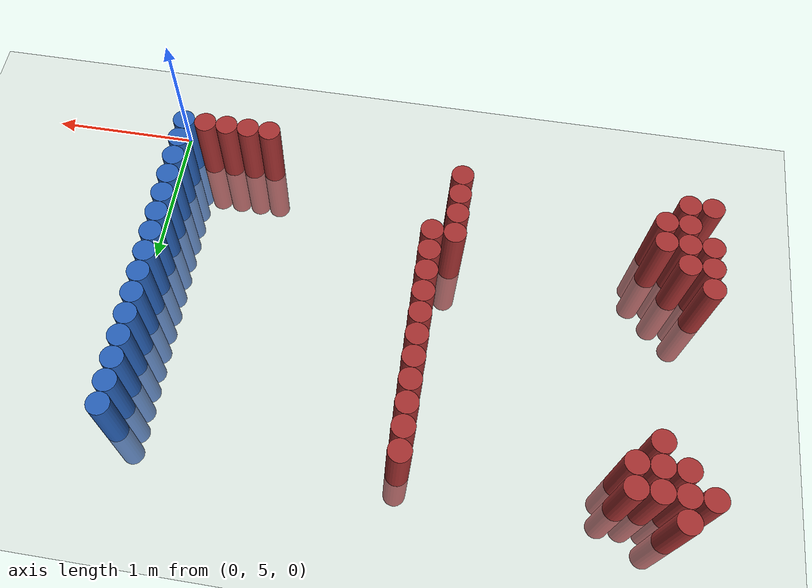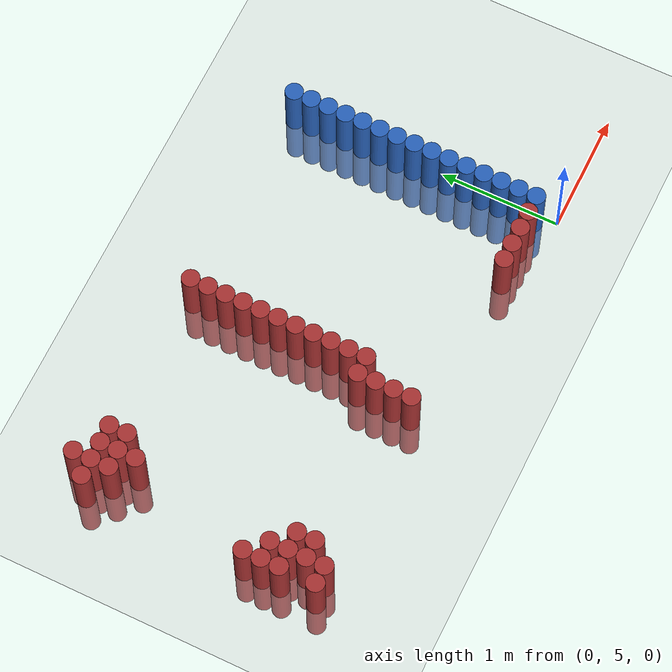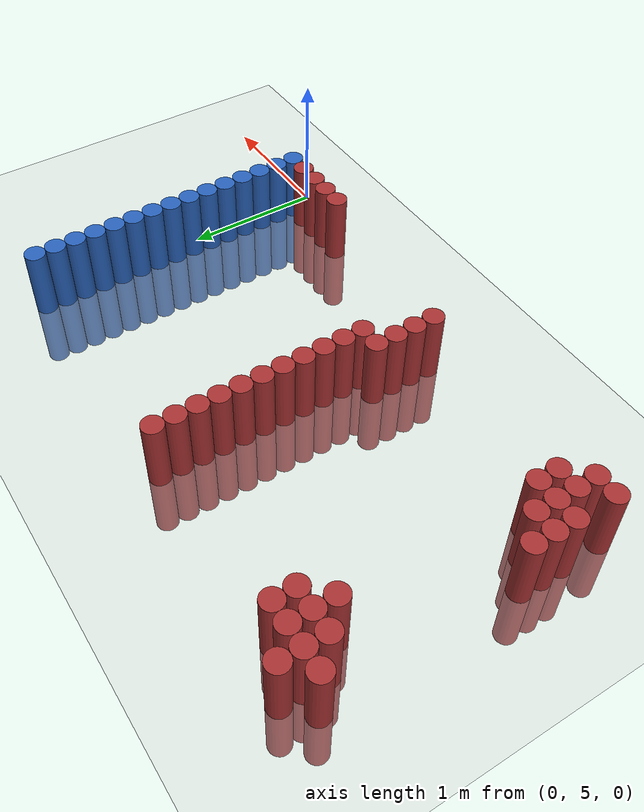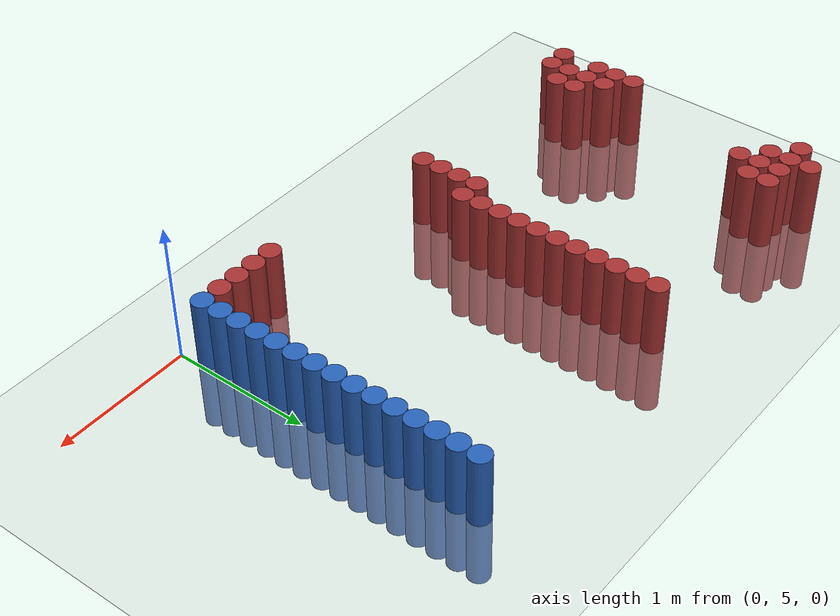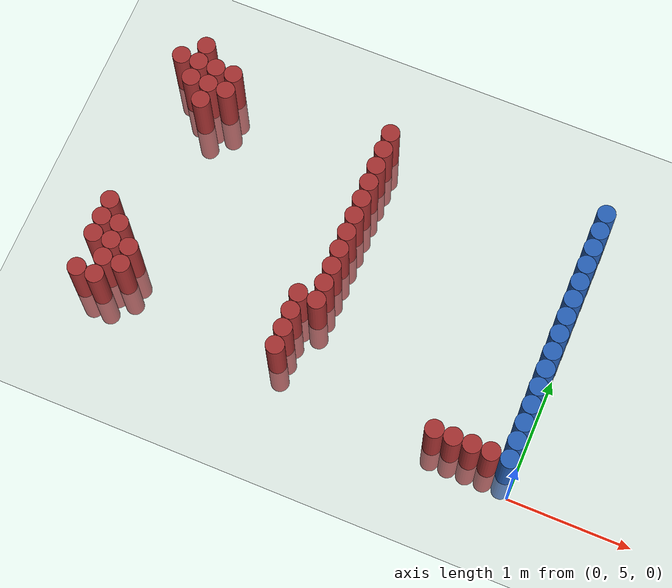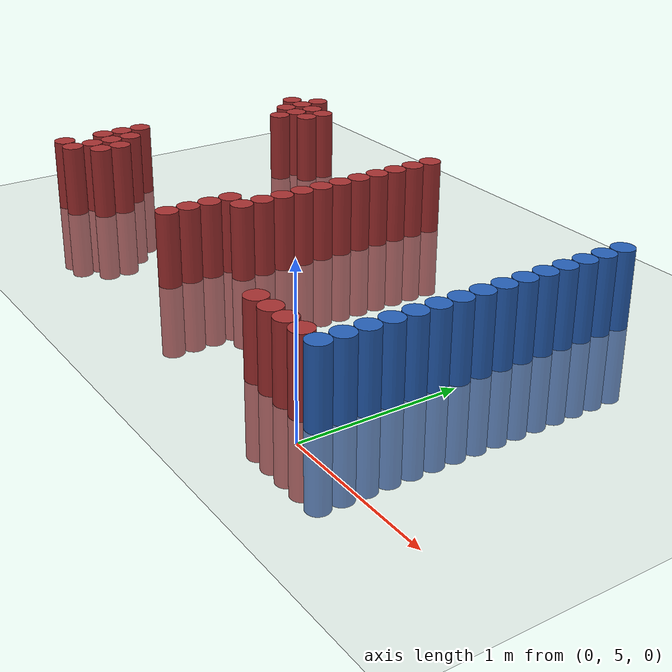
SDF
<sdf version="1.6">
 <world name="default">
  <model name="ground_plane">
   <static>1</static>
   <link name="link">
    <collision name="collision">
     <geometry><plane><normal>0 0 1</normal><size>100 100</size></plane></geometry>
     <surface><friction><ode><mu>100</mu><mu2>50</mu2></ode></friction></surface>
    </collision>
    <visual name="visual">
     <cast_shadows>0</cast_shadows>
     <geometry><plane><normal>0 0 1</normal><size>100 100</size></plane></geometry>
     <material>
      <script><uri>file://media/materials/scripts/gazebo.material</uri><name>Gazebo/Grey</name></script>
     </material>
    </visual>
   </link>
  </model>
  <model name="unit_cylinder_259">
   <static>1</static>
   <pose>-3.675000 5.325000 0.000000 0.000000 0.000000 0.000000</pose>
   <link name="link">
    <inertial>
     <mass>1</mass>
     <inertia><ixx>0.145833</ixx><ixy>0</ixy><ixz>0</ixz><iyy>0.145833</iyy><iyz>0</iyz><izz>0.125</izz></inertia>
    </inertial>
    <collision name="collision">
     <geometry><cylinder><radius>0.075000</radius><length>1</length></cylinder></geometry>
    </collision>
    <visual name="visual">
     <geometry><cylinder><radius>0.075000</radius><length>1</length></cylinder></geometry>
     <material>
      <ambient>0.648000 0.192000 0.192000 1</ambient>
      <diffuse>0.648000 0.192000 0.192000 1</diffuse>
     </material>
     <material>
      <script><name>Gazebo/Grey</name><uri>file://media/materials/scripts/gazebo.material</uri></script>
     </material>
    </visual>
   </link>
  </model>
  <model name="unit_cylinder_260">
   <static>1</static>
   <pose>-3.675000 5.625000 0.000000 0.000000 0.000000 0.000000</pose>
   <link name="link">
    <inertial>
     <mass>1</mass>
     <inertia><ixx>0.145833</ixx><ixy>0</ixy><ixz>0</ixz><iyy>0.145833</iyy><iyz>0</iyz><izz>0.125</izz></inertia>
    </inertial>
    <collision name="collision">
     <geometry><cylinder><radius>0.075000</radius><length>1</length></cylinder></geometry>
    </collision>
    <visual name="visual">
     <geometry><cylinder><radius>0.075000</radius><length>1</length></cylinder></geometry>
     <material>
      <ambient>0.648000 0.192000 0.192000 1</ambient>
      <diffuse>0.648000 0.192000 0.192000 1</diffuse>
     </material>
     <material>
      <script><name>Gazebo/Grey</name><uri>file://media/materials/scripts/gazebo.material</uri></script>
     </material>
    </visual>
   </link>
  </model>
  <model name="unit_cylinder_261">
   <static>1</static>
   <pose>-3.675000 5.775000 0.000000 0.000000 0.000000 0.000000</pose>
   <link name="link">
    <inertial>
     <mass>1</mass>
     <inertia><ixx>0.145833</ixx><ixy>0</ixy><ixz>0</ixz><iyy>0.145833</iyy><iyz>0</iyz><izz>0.125</izz></inertia>
    </inertial>
    <collision name="collision">
     <geometry><cylinder><radius>0.075000</radius><length>1</length></cylinder></geometry>
    </collision>
    <visual name="visual">
     <geometry><cylinder><radius>0.075000</radius><length>1</length></cylinder></geometry>
     <material>
      <ambient>0.648000 0.192000 0.192000 1</ambient>
      <diffuse>0.648000 0.192000 0.192000 1</diffuse>
     </material>
     <material>
      <script><name>Gazebo/Grey</name><uri>file://media/materials/scripts/gazebo.material</uri></script>
     </material>
    </visual>
   </link>
  </model>
  <model name="unit_cylinder_262">
   <static>1</static>
   <pose>-3.675000 5.925000 0.000000 0.000000 0.000000 0.000000</pose>
   <link name="link">
    <inertial>
     <mass>1</mass>
     <inertia><ixx>0.145833</ixx><ixy>0</ixy><ixz>0</ixz><iyy>0.145833</iyy><iyz>0</iyz><izz>0.125</izz></inertia>
    </inertial>
    <collision name="collision">
     <geometry><cylinder><radius>0.075000</radius><length>1</length></cylinder></geometry>
    </collision>
    <visual name="visual">
     <geometry><cylinder><radius>0.075000</radius><length>1</length></cylinder></geometry>
     <material>
      <ambient>0.648000 0.192000 0.192000 1</ambient>
      <diffuse>0.648000 0.192000 0.192000 1</diffuse>
     </material>
     <material>
      <script><name>Gazebo/Grey</name><uri>file://media/materials/scripts/gazebo.material</uri></script>
     </material>
    </visual>
   </link>
  </model>
  <model name="unit_cylinder_263">
   <static>1</static>
   <pose>-3.675000 7.275000 0.000000 0.000000 0.000000 0.000000</pose>
   <link name="link">
    <inertial>
     <mass>1</mass>
     <inertia><ixx>0.145833</ixx><ixy>0</ixy><ixz>0</ixz><iyy>0.145833</iyy><iyz>0</iyz><izz>0.125</izz></inertia>
    </inertial>
    <collision name="collision">
     <geometry><cylinder><radius>0.075000</radius><length>1</length></cylinder></geometry>
    </collision>
    <visual name="visual">
     <geometry><cylinder><radius>0.075000</radius><length>1</length></cylinder></geometry>
     <material>
      <ambient>0.648000 0.192000 0.192000 1</ambient>
      <diffuse>0.648000 0.192000 0.192000 1</diffuse>
     </material>
     <material>
      <script><name>Gazebo/Grey</name><uri>file://media/materials/scripts/gazebo.material</uri></script>
     </material>
    </visual>
   </link>
  </model>
  <model name="unit_cylinder_266">
   <static>1</static>
   <pose>-3.525000 5.325000 0.000000 0.000000 0.000000 0.000000</pose>
   <link name="link">
    <inertial>
     <mass>1</mass>
     <inertia><ixx>0.145833</ixx><ixy>0</ixy><ixz>0</ixz><iyy>0.145833</iyy><iyz>0</iyz><izz>0.125</izz></inertia>
    </inertial>
    <collision name="collision">
     <geometry><cylinder><radius>0.075000</radius><length>1</length></cylinder></geometry>
    </collision>
    <visual name="visual">
     <geometry><cylinder><radius>0.075000</radius><length>1</length></cylinder></geometry>
     <material>
      <ambient>0.648000 0.192000 0.192000 1</ambient>
      <diffuse>0.648000 0.192000 0.192000 1</diffuse>
     </material>
     <material>
      <script><name>Gazebo/Grey</name><uri>file://media/materials/scripts/gazebo.material</uri></script>
     </material>
    </visual>
   </link>
  </model>
  <model name="unit_cylinder_267">
   <static>1</static>
   <pose>-3.525000 5.475000 0.000000 0.000000 0.000000 0.000000</pose>
   <link name="link">
    <inertial>
     <mass>1</mass>
     <inertia><ixx>0.145833</ixx><ixy>0</ixy><ixz>0</ixz><iyy>0.145833</iyy><iyz>0</iyz><izz>0.125</izz></inertia>
    </inertial>
    <collision name="collision">
     <geometry><cylinder><radius>0.075000</radius><length>1</length></cylinder></geometry>
    </collision>
    <visual name="visual">
     <geometry><cylinder><radius>0.075000</radius><length>1</length></cylinder></geometry>
     <material>
      <ambient>0.648000 0.192000 0.192000 1</ambient>
      <diffuse>0.648000 0.192000 0.192000 1</diffuse>
     </material>
     <material>
      <script><name>Gazebo/Grey</name><uri>file://media/materials/scripts/gazebo.material</uri></script>
     </material>
    </visual>
   </link>
  </model>
  <model name="unit_cylinder_268">
   <static>1</static>
   <pose>-3.525000 5.625000 0.000000 0.000000 0.000000 0.000000</pose>
   <link name="link">
    <inertial>
     <mass>1</mass>
     <inertia><ixx>0.145833</ixx><ixy>0</ixy><ixz>0</ixz><iyy>0.145833</iyy><iyz>0</iyz><izz>0.125</izz></inertia>
    </inertial>
    <collision name="collision">
     <geometry><cylinder><radius>0.075000</radius><length>1</length></cylinder></geometry>
    </collision>
    <visual name="visual">
     <geometry><cylinder><radius>0.075000</radius><length>1</length></cylinder></geometry>
     <material>
      <ambient>0.648000 0.192000 0.192000 1</ambient>
      <diffuse>0.648000 0.192000 0.192000 1</diffuse>
     </material>
     <material>
      <script><name>Gazebo/Grey</name><uri>file://media/materials/scripts/gazebo.material</uri></script>
     </material>
    </visual>
   </link>
  </model>
  <model name="unit_cylinder_269">
   <static>1</static>
   <pose>-3.525000 5.775000 0.000000 0.000000 0.000000 0.000000</pose>
   <link name="link">
    <inertial>
     <mass>1</mass>
     <inertia><ixx>0.145833</ixx><ixy>0</ixy><ixz>0</ixz><iyy>0.145833</iyy><iyz>0</iyz><izz>0.125</izz></inertia>
    </inertial>
    <collision name="collision">
     <geometry><cylinder><radius>0.075000</radius><length>1</length></cylinder></geometry>
    </collision>
    <visual name="visual">
     <geometry><cylinder><radius>0.075000</radius><length>1</length></cylinder></geometry>
     <material>
      <ambient>0.648000 0.192000 0.192000 1</ambient>
      <diffuse>0.648000 0.192000 0.192000 1</diffuse>
     </material>
     <material>
      <script><name>Gazebo/Grey</name><uri>file://media/materials/scripts/gazebo.material</uri></script>
     </material>
    </visual>
   </link>
  </model>
  <model name="unit_cylinder_270">
   <static>1</static>
   <pose>-3.525000 7.125000 0.000000 0.000000 0.000000 0.000000</pose>
   <link name="link">
    <inertial>
     <mass>1</mass>
     <inertia><ixx>0.145833</ixx><ixy>0</ixy><ixz>0</ixz><iyy>0.145833</iyy><iyz>0</iyz><izz>0.125</izz></inertia>
    </inertial>
    <collision name="collision">
     <geometry><cylinder><radius>0.075000</radius><length>1</length></cylinder></geometry>
    </collision>
    <visual name="visual">
     <geometry><cylinder><radius>0.075000</radius><length>1</length></cylinder></geometry>
     <material>
      <ambient>0.648000 0.192000 0.192000 1</ambient>
      <diffuse>0.648000 0.192000 0.192000 1</diffuse>
     </material>
     <material>
      <script><name>Gazebo/Grey</name><uri>file://media/materials/scripts/gazebo.material</uri></script>
     </material>
    </visual>
   </link>
  </model>
  <model name="unit_cylinder_271">
   <static>1</static>
   <pose>-3.525000 7.275000 0.000000 0.000000 0.000000 0.000000</pose>
   <link name="link">
    <inertial>
     <mass>1</mass>
     <inertia><ixx>0.145833</ixx><ixy>0</ixy><ixz>0</ixz><iyy>0.145833</iyy><iyz>0</iyz><izz>0.125</izz></inertia>
    </inertial>
    <collision name="collision">
     <geometry><cylinder><radius>0.075000</radius><length>1</length></cylinder></geometry>
    </collision>
    <visual name="visual">
     <geometry><cylinder><radius>0.075000</radius><length>1</length></cylinder></geometry>
     <material>
      <ambient>0.648000 0.192000 0.192000 1</ambient>
      <diffuse>0.648000 0.192000 0.192000 1</diffuse>
     </material>
     <material>
      <script><name>Gazebo/Grey</name><uri>file://media/materials/scripts/gazebo.material</uri></script>
     </material>
    </visual>
   </link>
  </model>
  <model name="unit_cylinder_272">
   <static>1</static>
   <pose>-3.525000 7.425000 0.000000 0.000000 0.000000 0.000000</pose>
   <link name="link">
    <inertial>
     <mass>1</mass>
     <inertia><ixx>0.145833</ixx><ixy>0</ixy><ixz>0</ixz><iyy>0.145833</iyy><iyz>0</iyz><izz>0.125</izz></inertia>
    </inertial>
    <collision name="collision">
     <geometry><cylinder><radius>0.075000</radius><length>1</length></cylinder></geometry>
    </collision>
    <visual name="visual">
     <geometry><cylinder><radius>0.075000</radius><length>1</length></cylinder></geometry>
     <material>
      <ambient>0.648000 0.192000 0.192000 1</ambient>
      <diffuse>0.648000 0.192000 0.192000 1</diffuse>
     </material>
     <material>
      <script><name>Gazebo/Grey</name><uri>file://media/materials/scripts/gazebo.material</uri></script>
     </material>
    </visual>
   </link>
  </model>
  <model name="unit_cylinder_273">
   <static>1</static>
   <pose>-3.375000 5.475000 0.000000 0.000000 0.000000 0.000000</pose>
   <link name="link">
    <inertial>
     <mass>1</mass>
     <inertia><ixx>0.145833</ixx><ixy>0</ixy><ixz>0</ixz><iyy>0.145833</iyy><iyz>0</iyz><izz>0.125</izz></inertia>
    </inertial>
    <collision name="collision">
     <geometry><cylinder><radius>0.075000</radius><length>1</length></cylinder></geometry>
    </collision>
    <visual name="visual">
     <geometry><cylinder><radius>0.075000</radius><length>1</length></cylinder></geometry>
     <material>
      <ambient>0.648000 0.192000 0.192000 1</ambient>
      <diffuse>0.648000 0.192000 0.192000 1</diffuse>
     </material>
     <material>
      <script><name>Gazebo/Grey</name><uri>file://media/materials/scripts/gazebo.material</uri></script>
     </material>
    </visual>
   </link>
  </model>
  <model name="unit_cylinder_274">
   <static>1</static>
   <pose>-3.375000 5.625000 0.000000 0.000000 0.000000 0.000000</pose>
   <link name="link">
    <inertial>
     <mass>1</mass>
     <inertia><ixx>0.145833</ixx><ixy>0</ixy><ixz>0</ixz><iyy>0.145833</iyy><iyz>0</iyz><izz>0.125</izz></inertia>
    </inertial>
    <collision name="collision">
     <geometry><cylinder><radius>0.075000</radius><length>1</length></cylinder></geometry>
    </collision>
    <visual name="visual">
     <geometry><cylinder><radius>0.075000</radius><length>1</length></cylinder></geometry>
     <material>
      <ambient>0.648000 0.192000 0.192000 1</ambient>
      <diffuse>0.648000 0.192000 0.192000 1</diffuse>
     </material>
     <material>
      <script><name>Gazebo/Grey</name><uri>file://media/materials/scripts/gazebo.material</uri></script>
     </material>
    </visual>
   </link>
  </model>
  <model name="unit_cylinder_275">
   <static>1</static>
   <pose>-3.375000 6.975000 0.000000 0.000000 0.000000 0.000000</pose>
   <link name="link">
    <inertial>
     <mass>1</mass>
     <inertia><ixx>0.145833</ixx><ixy>0</ixy><ixz>0</ixz><iyy>0.145833</iyy><iyz>0</iyz><izz>0.125</izz></inertia>
    </inertial>
    <collision name="collision">
     <geometry><cylinder><radius>0.075000</radius><length>1</length></cylinder></geometry>
    </collision>
    <visual name="visual">
     <geometry><cylinder><radius>0.075000</radius><length>1</length></cylinder></geometry>
     <material>
      <ambient>0.648000 0.192000 0.192000 1</ambient>
      <diffuse>0.648000 0.192000 0.192000 1</diffuse>
     </material>
     <material>
      <script><name>Gazebo/Grey</name><uri>file://media/materials/scripts/gazebo.material</uri></script>
     </material>
    </visual>
   </link>
  </model>
  <model name="unit_cylinder_276">
   <static>1</static>
   <pose>-3.375000 7.125000 0.000000 0.000000 0.000000 0.000000</pose>
   <link name="link">
    <inertial>
     <mass>1</mass>
     <inertia><ixx>0.145833</ixx><ixy>0</ixy><ixz>0</ixz><iyy>0.145833</iyy><iyz>0</iyz><izz>0.125</izz></inertia>
    </inertial>
    <collision name="collision">
     <geometry><cylinder><radius>0.075000</radius><length>1</length></cylinder></geometry>
    </collision>
    <visual name="visual">
     <geometry><cylinder><radius>0.075000</radius><length>1</length></cylinder></geometry>
     <material>
      <ambient>0.648000 0.192000 0.192000 1</ambient>
      <diffuse>0.648000 0.192000 0.192000 1</diffuse>
     </material>
     <material>
      <script><name>Gazebo/Grey</name><uri>file://media/materials/scripts/gazebo.material</uri></script>
     </material>
    </visual>
   </link>
  </model>
  <model name="unit_cylinder_277">
   <static>1</static>
   <pose>-3.375000 7.275000 0.000000 0.000000 0.000000 0.000000</pose>
   <link name="link">
    <inertial>
     <mass>1</mass>
     <inertia><ixx>0.145833</ixx><ixy>0</ixy><ixz>0</ixz><iyy>0.145833</iyy><iyz>0</iyz><izz>0.125</izz></inertia>
    </inertial>
    <collision name="collision">
     <geometry><cylinder><radius>0.075000</radius><length>1</length></cylinder></geometry>
    </collision>
    <visual name="visual">
     <geometry><cylinder><radius>0.075000</radius><length>1</length></cylinder></geometry>
     <material>
      <ambient>0.648000 0.192000 0.192000 1</ambient>
      <diffuse>0.648000 0.192000 0.192000 1</diffuse>
     </material>
     <material>
      <script><name>Gazebo/Grey</name><uri>file://media/materials/scripts/gazebo.material</uri></script>
     </material>
    </visual>
   </link>
  </model>
  <model name="unit_cylinder_279">
   <static>1</static>
   <pose>-3.225000 7.125000 0.000000 0.000000 0.000000 0.000000</pose>
   <link name="link">
    <inertial>
     <mass>1</mass>
     <inertia><ixx>0.145833</ixx><ixy>0</ixy><ixz>0</ixz><iyy>0.145833</iyy><iyz>0</iyz><izz>0.125</izz></inertia>
    </inertial>
    <collision name="collision">
     <geometry><cylinder><radius>0.075000</radius><length>1</length></cylinder></geometry>
    </collision>
    <visual name="visual">
     <geometry><cylinder><radius>0.075000</radius><length>1</length></cylinder></geometry>
     <material>
      <ambient>0.648000 0.192000 0.192000 1</ambient>
      <diffuse>0.648000 0.192000 0.192000 1</diffuse>
     </material>
     <material>
      <script><name>Gazebo/Grey</name><uri>file://media/materials/scripts/gazebo.material</uri></script>
     </material>
    </visual>
   </link>
  </model>
  <model name="unit_cylinder_280">
   <static>1</static>
   <pose>-3.225000 7.275000 0.000000 0.000000 0.000000 0.000000</pose>
   <link name="link">
    <inertial>
     <mass>1</mass>
     <inertia><ixx>0.145833</ixx><ixy>0</ixy><ixz>0</ixz><iyy>0.145833</iyy><iyz>0</iyz><izz>0.125</izz></inertia>
    </inertial>
    <collision name="collision">
     <geometry><cylinder><radius>0.075000</radius><length>1</length></cylinder></geometry>
    </collision>
    <visual name="visual">
     <geometry><cylinder><radius>0.075000</radius><length>1</length></cylinder></geometry>
     <material>
      <ambient>0.648000 0.192000 0.192000 1</ambient>
      <diffuse>0.648000 0.192000 0.192000 1</diffuse>
     </material>
     <material>
      <script><name>Gazebo/Grey</name><uri>file://media/materials/scripts/gazebo.material</uri></script>
     </material>
    </visual>
   </link>
  </model>
  <model name="unit_cylinder_290">
   <static>1</static>
   <pose>-2.025000 5.325000 0.000000 0.000000 0.000000 0.000000</pose>
   <link name="link">
    <inertial>
     <mass>1</mass>
     <inertia><ixx>0.145833</ixx><ixy>0</ixy><ixz>0</ixz><iyy>0.145833</iyy><iyz>0</iyz><izz>0.125</izz></inertia>
    </inertial>
    <collision name="collision">
     <geometry><cylinder><radius>0.075000</radius><length>1</length></cylinder></geometry>
    </collision>
    <visual name="visual">
     <geometry><cylinder><radius>0.075000</radius><length>1</length></cylinder></geometry>
     <material>
      <ambient>0.648000 0.192000 0.192000 1</ambient>
      <diffuse>0.648000 0.192000 0.192000 1</diffuse>
     </material>
     <material>
      <script><name>Gazebo/Grey</name><uri>file://media/materials/scripts/gazebo.material</uri></script>
     </material>
    </visual>
   </link>
  </model>
  <model name="unit_cylinder_291">
   <static>1</static>
   <pose>-2.025000 5.475000 0.000000 0.000000 0.000000 0.000000</pose>
   <link name="link">
    <inertial>
     <mass>1</mass>
     <inertia><ixx>0.145833</ixx><ixy>0</ixy><ixz>0</ixz><iyy>0.145833</iyy><iyz>0</iyz><izz>0.125</izz></inertia>
    </inertial>
    <collision name="collision">
     <geometry><cylinder><radius>0.075000</radius><length>1</length></cylinder></geometry>
    </collision>
    <visual name="visual">
     <geometry><cylinder><radius>0.075000</radius><length>1</length></cylinder></geometry>
     <material>
      <ambient>0.648000 0.192000 0.192000 1</ambient>
      <diffuse>0.648000 0.192000 0.192000 1</diffuse>
     </material>
     <material>
      <script><name>Gazebo/Grey</name><uri>file://media/materials/scripts/gazebo.material</uri></script>
     </material>
    </visual>
   </link>
  </model>
  <model name="unit_cylinder_292">
   <static>1</static>
   <pose>-2.025000 5.625000 0.000000 0.000000 0.000000 0.000000</pose>
   <link name="link">
    <inertial>
     <mass>1</mass>
     <inertia><ixx>0.145833</ixx><ixy>0</ixy><ixz>0</ixz><iyy>0.145833</iyy><iyz>0</iyz><izz>0.125</izz></inertia>
    </inertial>
    <collision name="collision">
     <geometry><cylinder><radius>0.075000</radius><length>1</length></cylinder></geometry>
    </collision>
    <visual name="visual">
     <geometry><cylinder><radius>0.075000</radius><length>1</length></cylinder></geometry>
     <material>
      <ambient>0.648000 0.192000 0.192000 1</ambient>
      <diffuse>0.648000 0.192000 0.192000 1</diffuse>
     </material>
     <material>
      <script><name>Gazebo/Grey</name><uri>file://media/materials/scripts/gazebo.material</uri></script>
     </material>
    </visual>
   </link>
  </model>
  <model name="unit_cylinder_293">
   <static>1</static>
   <pose>-2.025000 5.775000 0.000000 0.000000 0.000000 0.000000</pose>
   <link name="link">
    <inertial>
     <mass>1</mass>
     <inertia><ixx>0.145833</ixx><ixy>0</ixy><ixz>0</ixz><iyy>0.145833</iyy><iyz>0</iyz><izz>0.125</izz></inertia>
    </inertial>
    <collision name="collision">
     <geometry><cylinder><radius>0.075000</radius><length>1</length></cylinder></geometry>
    </collision>
    <visual name="visual">
     <geometry><cylinder><radius>0.075000</radius><length>1</length></cylinder></geometry>
     <material>
      <ambient>0.648000 0.192000 0.192000 1</ambient>
      <diffuse>0.648000 0.192000 0.192000 1</diffuse>
     </material>
     <material>
      <script><name>Gazebo/Grey</name><uri>file://media/materials/scripts/gazebo.material</uri></script>
     </material>
    </visual>
   </link>
  </model>
  <model name="unit_cylinder_298">
   <static>1</static>
   <pose>-1.875000 5.775000 0.000000 0.000000 0.000000 0.000000</pose>
   <link name="link">
    <inertial>
     <mass>1</mass>
     <inertia><ixx>0.145833</ixx><ixy>0</ixy><ixz>0</ixz><iyy>0.145833</iyy><iyz>0</iyz><izz>0.125</izz></inertia>
    </inertial>
    <collision name="collision">
     <geometry><cylinder><radius>0.075000</radius><length>1</length></cylinder></geometry>
    </collision>
    <visual name="visual">
     <geometry><cylinder><radius>0.075000</radius><length>1</length></cylinder></geometry>
     <material>
      <ambient>0.648000 0.192000 0.192000 1</ambient>
      <diffuse>0.648000 0.192000 0.192000 1</diffuse>
     </material>
     <material>
      <script><name>Gazebo/Grey</name><uri>file://media/materials/scripts/gazebo.material</uri></script>
     </material>
    </visual>
   </link>
  </model>
  <model name="unit_cylinder_299">
   <static>1</static>
   <pose>-1.875000 5.925000 0.000000 0.000000 0.000000 0.000000</pose>
   <link name="link">
    <inertial>
     <mass>1</mass>
     <inertia><ixx>0.145833</ixx><ixy>0</ixy><ixz>0</ixz><iyy>0.145833</iyy><iyz>0</iyz><izz>0.125</izz></inertia>
    </inertial>
    <collision name="collision">
     <geometry><cylinder><radius>0.075000</radius><length>1</length></cylinder></geometry>
    </collision>
    <visual name="visual">
     <geometry><cylinder><radius>0.075000</radius><length>1</length></cylinder></geometry>
     <material>
      <ambient>0.648000 0.192000 0.192000 1</ambient>
      <diffuse>0.648000 0.192000 0.192000 1</diffuse>
     </material>
     <material>
      <script><name>Gazebo/Grey</name><uri>file://media/materials/scripts/gazebo.material</uri></script>
     </material>
    </visual>
   </link>
  </model>
  <model name="unit_cylinder_300">
   <static>1</static>
   <pose>-1.875000 6.075000 0.000000 0.000000 0.000000 0.000000</pose>
   <link name="link">
    <inertial>
     <mass>1</mass>
     <inertia><ixx>0.145833</ixx><ixy>0</ixy><ixz>0</ixz><iyy>0.145833</iyy><iyz>0</iyz><izz>0.125</izz></inertia>
    </inertial>
    <collision name="collision">
     <geometry><cylinder><radius>0.075000</radius><length>1</length></cylinder></geometry>
    </collision>
    <visual name="visual">
     <geometry><cylinder><radius>0.075000</radius><length>1</length></cylinder></geometry>
     <material>
      <ambient>0.648000 0.192000 0.192000 1</ambient>
      <diffuse>0.648000 0.192000 0.192000 1</diffuse>
     </material>
     <material>
      <script><name>Gazebo/Grey</name><uri>file://media/materials/scripts/gazebo.material</uri></script>
     </material>
    </visual>
   </link>
  </model>
  <model name="unit_cylinder_301">
   <static>1</static>
   <pose>-1.875000 6.225000 0.000000 0.000000 0.000000 0.000000</pose>
   <link name="link">
    <inertial>
     <mass>1</mass>
     <inertia><ixx>0.145833</ixx><ixy>0</ixy><ixz>0</ixz><iyy>0.145833</iyy><iyz>0</iyz><izz>0.125</izz></inertia>
    </inertial>
    <collision name="collision">
     <geometry><cylinder><radius>0.075000</radius><length>1</length></cylinder></geometry>
    </collision>
    <visual name="visual">
     <geometry><cylinder><radius>0.075000</radius><length>1</length></cylinder></geometry>
     <material>
      <ambient>0.648000 0.192000 0.192000 1</ambient>
      <diffuse>0.648000 0.192000 0.192000 1</diffuse>
     </material>
     <material>
      <script><name>Gazebo/Grey</name><uri>file://media/materials/scripts/gazebo.material</uri></script>
     </material>
    </visual>
   </link>
  </model>
  <model name="unit_cylinder_302">
   <static>1</static>
   <pose>-1.875000 6.375000 0.000000 0.000000 0.000000 0.000000</pose>
   <link name="link">
    <inertial>
     <mass>1</mass>
     <inertia><ixx>0.145833</ixx><ixy>0</ixy><ixz>0</ixz><iyy>0.145833</iyy><iyz>0</iyz><izz>0.125</izz></inertia>
    </inertial>
    <collision name="collision">
     <geometry><cylinder><radius>0.075000</radius><length>1</length></cylinder></geometry>
    </collision>
    <visual name="visual">
     <geometry><cylinder><radius>0.075000</radius><length>1</length></cylinder></geometry>
     <material>
      <ambient>0.648000 0.192000 0.192000 1</ambient>
      <diffuse>0.648000 0.192000 0.192000 1</diffuse>
     </material>
     <material>
      <script><name>Gazebo/Grey</name><uri>file://media/materials/scripts/gazebo.material</uri></script>
     </material>
    </visual>
   </link>
  </model>
  <model name="unit_cylinder_303">
   <static>1</static>
   <pose>-1.875000 6.525000 0.000000 0.000000 0.000000 0.000000</pose>
   <link name="link">
    <inertial>
     <mass>1</mass>
     <inertia><ixx>0.145833</ixx><ixy>0</ixy><ixz>0</ixz><iyy>0.145833</iyy><iyz>0</iyz><izz>0.125</izz></inertia>
    </inertial>
    <collision name="collision">
     <geometry><cylinder><radius>0.075000</radius><length>1</length></cylinder></geometry>
    </collision>
    <visual name="visual">
     <geometry><cylinder><radius>0.075000</radius><length>1</length></cylinder></geometry>
     <material>
      <ambient>0.648000 0.192000 0.192000 1</ambient>
      <diffuse>0.648000 0.192000 0.192000 1</diffuse>
     </material>
     <material>
      <script><name>Gazebo/Grey</name><uri>file://media/materials/scripts/gazebo.material</uri></script>
     </material>
    </visual>
   </link>
  </model>
  <model name="unit_cylinder_304">
   <static>1</static>
   <pose>-1.875000 6.675000 0.000000 0.000000 0.000000 0.000000</pose>
   <link name="link">
    <inertial>
     <mass>1</mass>
     <inertia><ixx>0.145833</ixx><ixy>0</ixy><ixz>0</ixz><iyy>0.145833</iyy><iyz>0</iyz><izz>0.125</izz></inertia>
    </inertial>
    <collision name="collision">
     <geometry><cylinder><radius>0.075000</radius><length>1</length></cylinder></geometry>
    </collision>
    <visual name="visual">
     <geometry><cylinder><radius>0.075000</radius><length>1</length></cylinder></geometry>
     <material>
      <ambient>0.648000 0.192000 0.192000 1</ambient>
      <diffuse>0.648000 0.192000 0.192000 1</diffuse>
     </material>
     <material>
      <script><name>Gazebo/Grey</name><uri>file://media/materials/scripts/gazebo.material</uri></script>
     </material>
    </visual>
   </link>
  </model>
  <model name="unit_cylinder_305">
   <static>1</static>
   <pose>-1.875000 6.825000 0.000000 0.000000 0.000000 0.000000</pose>
   <link name="link">
    <inertial>
     <mass>1</mass>
     <inertia><ixx>0.145833</ixx><ixy>0</ixy><ixz>0</ixz><iyy>0.145833</iyy><iyz>0</iyz><izz>0.125</izz></inertia>
    </inertial>
    <collision name="collision">
     <geometry><cylinder><radius>0.075000</radius><length>1</length></cylinder></geometry>
    </collision>
    <visual name="visual">
     <geometry><cylinder><radius>0.075000</radius><length>1</length></cylinder></geometry>
     <material>
      <ambient>0.648000 0.192000 0.192000 1</ambient>
      <diffuse>0.648000 0.192000 0.192000 1</diffuse>
     </material>
     <material>
      <script><name>Gazebo/Grey</name><uri>file://media/materials/scripts/gazebo.material</uri></script>
     </material>
    </visual>
   </link>
  </model>
  <model name="unit_cylinder_306">
   <static>1</static>
   <pose>-1.875000 6.975000 0.000000 0.000000 0.000000 0.000000</pose>
   <link name="link">
    <inertial>
     <mass>1</mass>
     <inertia><ixx>0.145833</ixx><ixy>0</ixy><ixz>0</ixz><iyy>0.145833</iyy><iyz>0</iyz><izz>0.125</izz></inertia>
    </inertial>
    <collision name="collision">
     <geometry><cylinder><radius>0.075000</radius><length>1</length></cylinder></geometry>
    </collision>
    <visual name="visual">
     <geometry><cylinder><radius>0.075000</radius><length>1</length></cylinder></geometry>
     <material>
      <ambient>0.648000 0.192000 0.192000 1</ambient>
      <diffuse>0.648000 0.192000 0.192000 1</diffuse>
     </material>
     <material>
      <script><name>Gazebo/Grey</name><uri>file://media/materials/scripts/gazebo.material</uri></script>
     </material>
    </visual>
   </link>
  </model>
  <model name="unit_cylinder_307">
   <static>1</static>
   <pose>-1.875000 7.125000 0.000000 0.000000 0.000000 0.000000</pose>
   <link name="link">
    <inertial>
     <mass>1</mass>
     <inertia><ixx>0.145833</ixx><ixy>0</ixy><ixz>0</ixz><iyy>0.145833</iyy><iyz>0</iyz><izz>0.125</izz></inertia>
    </inertial>
    <collision name="collision">
     <geometry><cylinder><radius>0.075000</radius><length>1</length></cylinder></geometry>
    </collision>
    <visual name="visual">
     <geometry><cylinder><radius>0.075000</radius><length>1</length></cylinder></geometry>
     <material>
      <ambient>0.648000 0.192000 0.192000 1</ambient>
      <diffuse>0.648000 0.192000 0.192000 1</diffuse>
     </material>
     <material>
      <script><name>Gazebo/Grey</name><uri>file://media/materials/scripts/gazebo.material</uri></script>
     </material>
    </visual>
   </link>
  </model>
  <model name="unit_cylinder_308">
   <static>1</static>
   <pose>-1.875000 7.275000 0.000000 0.000000 0.000000 0.000000</pose>
   <link name="link">
    <inertial>
     <mass>1</mass>
     <inertia><ixx>0.145833</ixx><ixy>0</ixy><ixz>0</ixz><iyy>0.145833</iyy><iyz>0</iyz><izz>0.125</izz></inertia>
    </inertial>
    <collision name="collision">
     <geometry><cylinder><radius>0.075000</radius><length>1</length></cylinder></geometry>
    </collision>
    <visual name="visual">
     <geometry><cylinder><radius>0.075000</radius><length>1</length></cylinder></geometry>
     <material>
      <ambient>0.648000 0.192000 0.192000 1</ambient>
      <diffuse>0.648000 0.192000 0.192000 1</diffuse>
     </material>
     <material>
      <script><name>Gazebo/Grey</name><uri>file://media/materials/scripts/gazebo.material</uri></script>
     </material>
    </visual>
   </link>
  </model>
  <model name="unit_cylinder_333">
   <static>1</static>
   <pose>-0.675000 5.175000 0.000000 0.000000 0.000000 0.000000</pose>
   <link name="link">
    <inertial>
     <mass>1</mass>
     <inertia><ixx>0.145833</ixx><ixy>0</ixy><ixz>0</ixz><iyy>0.145833</iyy><iyz>0</iyz><izz>0.125</izz></inertia>
    </inertial>
    <collision name="collision">
     <geometry><cylinder><radius>0.075000</radius><length>1</length></cylinder></geometry>
    </collision>
    <visual name="visual">
     <geometry><cylinder><radius>0.075000</radius><length>1</length></cylinder></geometry>
     <material>
      <ambient>0.648000 0.192000 0.192000 1</ambient>
      <diffuse>0.648000 0.192000 0.192000 1</diffuse>
     </material>
     <material>
      <script><name>Gazebo/Grey</name><uri>file://media/materials/scripts/gazebo.material</uri></script>
     </material>
    </visual>
   </link>
  </model>
  <model name="unit_cylinder_335">
   <static>1</static>
   <pose>-0.525000 5.175000 0.000000 0.000000 0.000000 0.000000</pose>
   <link name="link">
    <inertial>
     <mass>1</mass>
     <inertia><ixx>0.145833</ixx><ixy>0</ixy><ixz>0</ixz><iyy>0.145833</iyy><iyz>0</iyz><izz>0.125</izz></inertia>
    </inertial>
    <collision name="collision">
     <geometry><cylinder><radius>0.075000</radius><length>1</length></cylinder></geometry>
    </collision>
    <visual name="visual">
     <geometry><cylinder><radius>0.075000</radius><length>1</length></cylinder></geometry>
     <material>
      <ambient>0.648000 0.192000 0.192000 1</ambient>
      <diffuse>0.648000 0.192000 0.192000 1</diffuse>
     </material>
     <material>
      <script><name>Gazebo/Grey</name><uri>file://media/materials/scripts/gazebo.material</uri></script>
     </material>
    </visual>
   </link>
  </model>
  <model name="unit_cylinder_337">
   <static>1</static>
   <pose>-0.375000 5.175000 0.000000 0.000000 0.000000 0.000000</pose>
   <link name="link">
    <inertial>
     <mass>1</mass>
     <inertia><ixx>0.145833</ixx><ixy>0</ixy><ixz>0</ixz><iyy>0.145833</iyy><iyz>0</iyz><izz>0.125</izz></inertia>
    </inertial>
    <collision name="collision">
     <geometry><cylinder><radius>0.075000</radius><length>1</length></cylinder></geometry>
    </collision>
    <visual name="visual">
     <geometry><cylinder><radius>0.075000</radius><length>1</length></cylinder></geometry>
     <material>
      <ambient>0.648000 0.192000 0.192000 1</ambient>
      <diffuse>0.648000 0.192000 0.192000 1</diffuse>
     </material>
     <material>
      <script><name>Gazebo/Grey</name><uri>file://media/materials/scripts/gazebo.material</uri></script>
     </material>
    </visual>
   </link>
  </model>
  <model name="unit_cylinder_339">
   <static>1</static>
   <pose>-0.225000 5.175000 0.000000 0.000000 0.000000 0.000000</pose>
   <link name="link">
    <inertial>
     <mass>1</mass>
     <inertia><ixx>0.145833</ixx><ixy>0</ixy><ixz>0</ixz><iyy>0.145833</iyy><iyz>0</iyz><izz>0.125</izz></inertia>
    </inertial>
    <collision name="collision">
     <geometry><cylinder><radius>0.075000</radius><length>1</length></cylinder></geometry>
    </collision>
    <visual name="visual">
     <geometry><cylinder><radius>0.075000</radius><length>1</length></cylinder></geometry>
     <material>
      <ambient>0.648000 0.192000 0.192000 1</ambient>
      <diffuse>0.648000 0.192000 0.192000 1</diffuse>
     </material>
     <material>
      <script><name>Gazebo/Grey</name><uri>file://media/materials/scripts/gazebo.material</uri></script>
     </material>
    </visual>
   </link>
  </model>
  <model name="unit_cylinder_341">
   <static>1</static>
   <pose>-0.075000 5.175000 0.000000 0.000000 0.000000 0.000000</pose>
   <link name="link">
    <inertial>
     <mass>1</mass>
     <inertia><ixx>0.145833</ixx><ixy>0</ixy><ixz>0</ixz><iyy>0.145833</iyy><iyz>0</iyz><izz>0.125</izz></inertia>
    </inertial>
    <collision name="collision">
     <geometry><cylinder><radius>0.075000</radius><length>1</length></cylinder></geometry>
    </collision>
    <visual name="visual">
     <geometry><cylinder><radius>0.075000</radius><length>1</length></cylinder></geometry>
     <material>
      <ambient>0.152000 0.379000 0.720000 1</ambient>
      <diffuse>0.152000 0.379000 0.720000 1</diffuse>
     </material>
     <material>
      <script><name>Gazebo/Grey</name><uri>file://media/materials/scripts/gazebo.material</uri></script>
     </material>
    </visual>
   </link>
  </model>
  <model name="unit_cylinder_342">
   <static>1</static>
   <pose>-0.075000 5.325000 0.000000 0.000000 0.000000 0.000000</pose>
   <link name="link">
    <inertial>
     <mass>1</mass>
     <inertia><ixx>0.145833</ixx><ixy>0</ixy><ixz>0</ixz><iyy>0.145833</iyy><iyz>0</iyz><izz>0.125</izz></inertia>
    </inertial>
    <collision name="collision">
     <geometry><cylinder><radius>0.075000</radius><length>1</length></cylinder></geometry>
    </collision>
    <visual name="visual">
     <geometry><cylinder><radius>0.075000</radius><length>1</length></cylinder></geometry>
     <material>
      <ambient>0.152000 0.379000 0.720000 1</ambient>
      <diffuse>0.152000 0.379000 0.720000 1</diffuse>
     </material>
     <material>
      <script><name>Gazebo/Grey</name><uri>file://media/materials/scripts/gazebo.material</uri></script>
     </material>
    </visual>
   </link>
  </model>
  <model name="unit_cylinder_343">
   <static>1</static>
   <pose>-0.075000 5.475000 0.000000 0.000000 0.000000 0.000000</pose>
   <link name="link">
    <inertial>
     <mass>1</mass>
     <inertia><ixx>0.145833</ixx><ixy>0</ixy><ixz>0</ixz><iyy>0.145833</iyy><iyz>0</iyz><izz>0.125</izz></inertia>
    </inertial>
    <collision name="collision">
     <geometry><cylinder><radius>0.075000</radius><length>1</length></cylinder></geometry>
    </collision>
    <visual name="visual">
     <geometry><cylinder><radius>0.075000</radius><length>1</length></cylinder></geometry>
     <material>
      <ambient>0.152000 0.379000 0.720000 1</ambient>
      <diffuse>0.152000 0.379000 0.720000 1</diffuse>
     </material>
     <material>
      <script><name>Gazebo/Grey</name><uri>file://media/materials/scripts/gazebo.material</uri></script>
     </material>
    </visual>
   </link>
  </model>
  <model name="unit_cylinder_344">
   <static>1</static>
   <pose>-0.075000 5.625000 0.000000 0.000000 0.000000 0.000000</pose>
   <link name="link">
    <inertial>
     <mass>1</mass>
     <inertia><ixx>0.145833</ixx><ixy>0</ixy><ixz>0</ixz><iyy>0.145833</iyy><iyz>0</iyz><izz>0.125</izz></inertia>
    </inertial>
    <collision name="collision">
     <geometry><cylinder><radius>0.075000</radius><length>1</length></cylinder></geometry>
    </collision>
    <visual name="visual">
     <geometry><cylinder><radius>0.075000</radius><length>1</length></cylinder></geometry>
     <material>
      <ambient>0.152000 0.379000 0.720000 1</ambient>
      <diffuse>0.152000 0.379000 0.720000 1</diffuse>
     </material>
     <material>
      <script><name>Gazebo/Grey</name><uri>file://media/materials/scripts/gazebo.material</uri></script>
     </material>
    </visual>
   </link>
  </model>
  <model name="unit_cylinder_345">
   <static>1</static>
   <pose>-0.075000 5.775000 0.000000 0.000000 0.000000 0.000000</pose>
   <link name="link">
    <inertial>
     <mass>1</mass>
     <inertia><ixx>0.145833</ixx><ixy>0</ixy><ixz>0</ixz><iyy>0.145833</iyy><iyz>0</iyz><izz>0.125</izz></inertia>
    </inertial>
    <collision name="collision">
     <geometry><cylinder><radius>0.075000</radius><length>1</length></cylinder></geometry>
    </collision>
    <visual name="visual">
     <geometry><cylinder><radius>0.075000</radius><length>1</length></cylinder></geometry>
     <material>
      <ambient>0.152000 0.379000 0.720000 1</ambient>
      <diffuse>0.152000 0.379000 0.720000 1</diffuse>
     </material>
     <material>
      <script><name>Gazebo/Grey</name><uri>file://media/materials/scripts/gazebo.material</uri></script>
     </material>
    </visual>
   </link>
  </model>
  <model name="unit_cylinder_346">
   <static>1</static>
   <pose>-0.075000 5.925000 0.000000 0.000000 0.000000 0.000000</pose>
   <link name="link">
    <inertial>
     <mass>1</mass>
     <inertia><ixx>0.145833</ixx><ixy>0</ixy><ixz>0</ixz><iyy>0.145833</iyy><iyz>0</iyz><izz>0.125</izz></inertia>
    </inertial>
    <collision name="collision">
     <geometry><cylinder><radius>0.075000</radius><length>1</length></cylinder></geometry>
    </collision>
    <visual name="visual">
     <geometry><cylinder><radius>0.075000</radius><length>1</length></cylinder></geometry>
     <material>
      <ambient>0.152000 0.379000 0.720000 1</ambient>
      <diffuse>0.152000 0.379000 0.720000 1</diffuse>
     </material>
     <material>
      <script><name>Gazebo/Grey</name><uri>file://media/materials/scripts/gazebo.material</uri></script>
     </material>
    </visual>
   </link>
  </model>
  <model name="unit_cylinder_347">
   <static>1</static>
   <pose>-0.075000 6.075000 0.000000 0.000000 0.000000 0.000000</pose>
   <link name="link">
    <inertial>
     <mass>1</mass>
     <inertia><ixx>0.145833</ixx><ixy>0</ixy><ixz>0</ixz><iyy>0.145833</iyy><iyz>0</iyz><izz>0.125</izz></inertia>
    </inertial>
    <collision name="collision">
     <geometry><cylinder><radius>0.075000</radius><length>1</length></cylinder></geometry>
    </collision>
    <visual name="visual">
     <geometry><cylinder><radius>0.075000</radius><length>1</length></cylinder></geometry>
     <material>
      <ambient>0.152000 0.379000 0.720000 1</ambient>
      <diffuse>0.152000 0.379000 0.720000 1</diffuse>
     </material>
     <material>
      <script><name>Gazebo/Grey</name><uri>file://media/materials/scripts/gazebo.material</uri></script>
     </material>
    </visual>
   </link>
  </model>
  <model name="unit_cylinder_348">
   <static>1</static>
   <pose>-0.075000 6.225000 0.000000 0.000000 0.000000 0.000000</pose>
   <link name="link">
    <inertial>
     <mass>1</mass>
     <inertia><ixx>0.145833</ixx><ixy>0</ixy><ixz>0</ixz><iyy>0.145833</iyy><iyz>0</iyz><izz>0.125</izz></inertia>
    </inertial>
    <collision name="collision">
     <geometry><cylinder><radius>0.075000</radius><length>1</length></cylinder></geometry>
    </collision>
    <visual name="visual">
     <geometry><cylinder><radius>0.075000</radius><length>1</length></cylinder></geometry>
     <material>
      <ambient>0.152000 0.379000 0.720000 1</ambient>
      <diffuse>0.152000 0.379000 0.720000 1</diffuse>
     </material>
     <material>
      <script><name>Gazebo/Grey</name><uri>file://media/materials/scripts/gazebo.material</uri></script>
     </material>
    </visual>
   </link>
  </model>
  <model name="unit_cylinder_349">
   <static>1</static>
   <pose>-0.075000 6.375000 0.000000 0.000000 0.000000 0.000000</pose>
   <link name="link">
    <inertial>
     <mass>1</mass>
     <inertia><ixx>0.145833</ixx><ixy>0</ixy><ixz>0</ixz><iyy>0.145833</iyy><iyz>0</iyz><izz>0.125</izz></inertia>
    </inertial>
    <collision name="collision">
     <geometry><cylinder><radius>0.075000</radius><length>1</length></cylinder></geometry>
    </collision>
    <visual name="visual">
     <geometry><cylinder><radius>0.075000</radius><length>1</length></cylinder></geometry>
     <material>
      <ambient>0.152000 0.379000 0.720000 1</ambient>
      <diffuse>0.152000 0.379000 0.720000 1</diffuse>
     </material>
     <material>
      <script><name>Gazebo/Grey</name><uri>file://media/materials/scripts/gazebo.material</uri></script>
     </material>
    </visual>
   </link>
  </model>
  <model name="unit_cylinder_350">
   <static>1</static>
   <pose>-0.075000 6.525000 0.000000 0.000000 0.000000 0.000000</pose>
   <link name="link">
    <inertial>
     <mass>1</mass>
     <inertia><ixx>0.145833</ixx><ixy>0</ixy><ixz>0</ixz><iyy>0.145833</iyy><iyz>0</iyz><izz>0.125</izz></inertia>
    </inertial>
    <collision name="collision">
     <geometry><cylinder><radius>0.075000</radius><length>1</length></cylinder></geometry>
    </collision>
    <visual name="visual">
     <geometry><cylinder><radius>0.075000</radius><length>1</length></cylinder></geometry>
     <material>
      <ambient>0.152000 0.379000 0.720000 1</ambient>
      <diffuse>0.152000 0.379000 0.720000 1</diffuse>
     </material>
     <material>
      <script><name>Gazebo/Grey</name><uri>file://media/materials/scripts/gazebo.material</uri></script>
     </material>
    </visual>
   </link>
  </model>
  <model name="unit_cylinder_351">
   <static>1</static>
   <pose>-0.075000 6.675000 0.000000 0.000000 0.000000 0.000000</pose>
   <link name="link">
    <inertial>
     <mass>1</mass>
     <inertia><ixx>0.145833</ixx><ixy>0</ixy><ixz>0</ixz><iyy>0.145833</iyy><iyz>0</iyz><izz>0.125</izz></inertia>
    </inertial>
    <collision name="collision">
     <geometry><cylinder><radius>0.075000</radius><length>1</length></cylinder></geometry>
    </collision>
    <visual name="visual">
     <geometry><cylinder><radius>0.075000</radius><length>1</length></cylinder></geometry>
     <material>
      <ambient>0.152000 0.379000 0.720000 1</ambient>
      <diffuse>0.152000 0.379000 0.720000 1</diffuse>
     </material>
     <material>
      <script><name>Gazebo/Grey</name><uri>file://media/materials/scripts/gazebo.material</uri></script>
     </material>
    </visual>
   </link>
  </model>
  <model name="unit_cylinder_352">
   <static>1</static>
   <pose>-0.075000 6.825000 0.000000 0.000000 0.000000 0.000000</pose>
   <link name="link">
    <inertial>
     <mass>1</mass>
     <inertia><ixx>0.145833</ixx><ixy>0</ixy><ixz>0</ixz><iyy>0.145833</iyy><iyz>0</iyz><izz>0.125</izz></inertia>
    </inertial>
    <collision name="collision">
     <geometry><cylinder><radius>0.075000</radius><length>1</length></cylinder></geometry>
    </collision>
    <visual name="visual">
     <geometry><cylinder><radius>0.075000</radius><length>1</length></cylinder></geometry>
     <material>
      <ambient>0.152000 0.379000 0.720000 1</ambient>
      <diffuse>0.152000 0.379000 0.720000 1</diffuse>
     </material>
     <material>
      <script><name>Gazebo/Grey</name><uri>file://media/materials/scripts/gazebo.material</uri></script>
     </material>
    </visual>
   </link>
  </model>
  <model name="unit_cylinder_353">
   <static>1</static>
   <pose>-0.075000 6.975000 0.000000 0.000000 0.000000 0.000000</pose>
   <link name="link">
    <inertial>
     <mass>1</mass>
     <inertia><ixx>0.145833</ixx><ixy>0</ixy><ixz>0</ixz><iyy>0.145833</iyy><iyz>0</iyz><izz>0.125</izz></inertia>
    </inertial>
    <collision name="collision">
     <geometry><cylinder><radius>0.075000</radius><length>1</length></cylinder></geometry>
    </collision>
    <visual name="visual">
     <geometry><cylinder><radius>0.075000</radius><length>1</length></cylinder></geometry>
     <material>
      <ambient>0.152000 0.379000 0.720000 1</ambient>
      <diffuse>0.152000 0.379000 0.720000 1</diffuse>
     </material>
     <material>
      <script><name>Gazebo/Grey</name><uri>file://media/materials/scripts/gazebo.material</uri></script>
     </material>
    </visual>
   </link>
  </model>
  <model name="unit_cylinder_354">
   <static>1</static>
   <pose>-0.075000 7.125000 0.000000 0.000000 0.000000 0.000000</pose>
   <link name="link">
    <inertial>
     <mass>1</mass>
     <inertia><ixx>0.145833</ixx><ixy>0</ixy><ixz>0</ixz><iyy>0.145833</iyy><iyz>0</iyz><izz>0.125</izz></inertia>
    </inertial>
    <collision name="collision">
     <geometry><cylinder><radius>0.075000</radius><length>1</length></cylinder></geometry>
    </collision>
    <visual name="visual">
     <geometry><cylinder><radius>0.075000</radius><length>1</length></cylinder></geometry>
     <material>
      <ambient>0.152000 0.379000 0.720000 1</ambient>
      <diffuse>0.152000 0.379000 0.720000 1</diffuse>
     </material>
     <material>
      <script><name>Gazebo/Grey</name><uri>file://media/materials/scripts/gazebo.material</uri></script>
     </material>
    </visual>
   </link>
  </model>
  <model name="unit_cylinder_355">
   <static>1</static>
   <pose>-0.075000 7.275000 0.000000 0.000000 0.000000 0.000000</pose>
   <link name="link">
    <inertial>
     <mass>1</mass>
     <inertia><ixx>0.145833</ixx><ixy>0</ixy><ixz>0</ixz><iyy>0.145833</iyy><iyz>0</iyz><izz>0.125</izz></inertia>
    </inertial>
    <collision name="collision">
     <geometry><cylinder><radius>0.075000</radius><length>1</length></cylinder></geometry>
    </collision>
    <visual name="visual">
     <geometry><cylinder><radius>0.075000</radius><length>1</length></cylinder></geometry>
     <material>
      <ambient>0.152000 0.379000 0.720000 1</ambient>
      <diffuse>0.152000 0.379000 0.720000 1</diffuse>
     </material>
     <material>
      <script><name>Gazebo/Grey</name><uri>file://media/materials/scripts/gazebo.material</uri></script>
     </material>
    </visual>
   </link>
  </model>
 </world>
</sdf>
